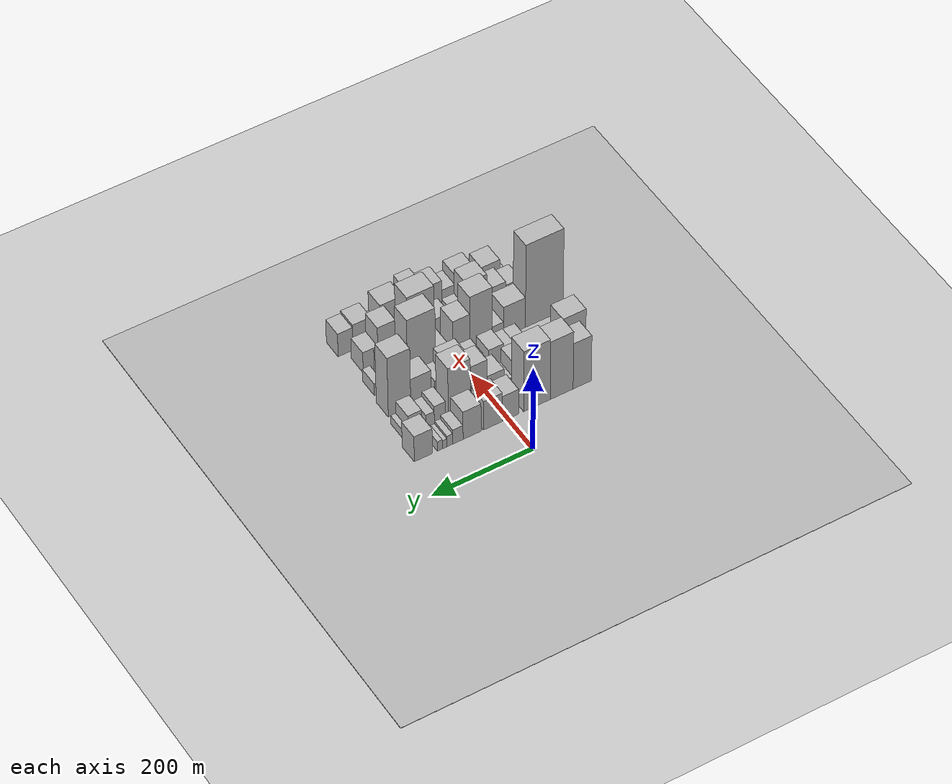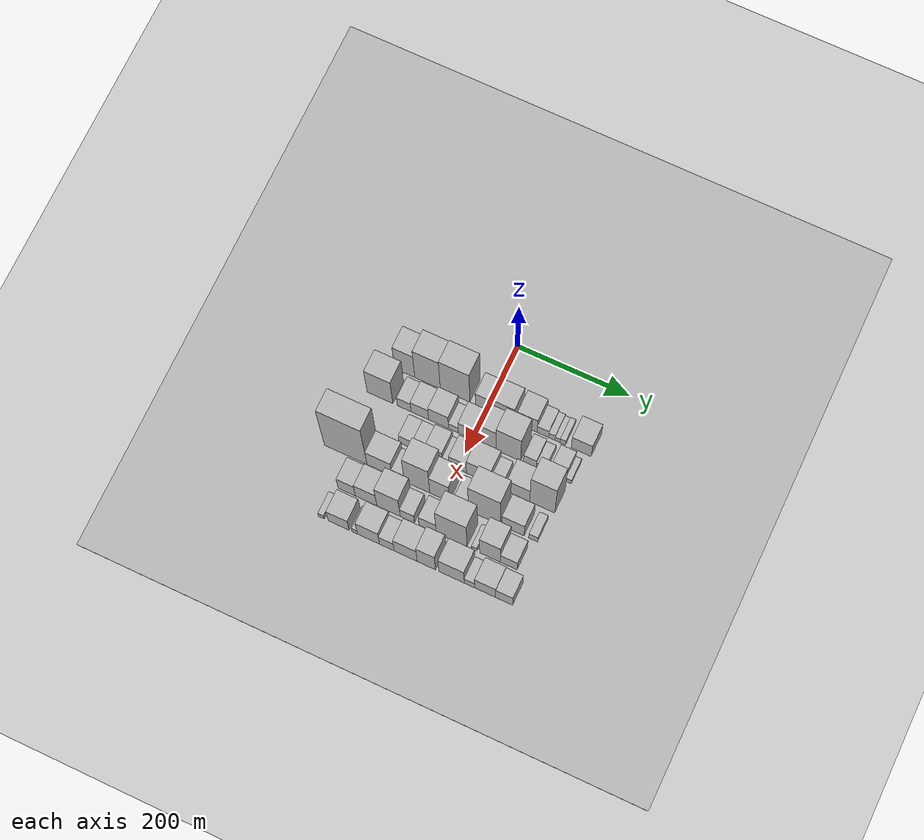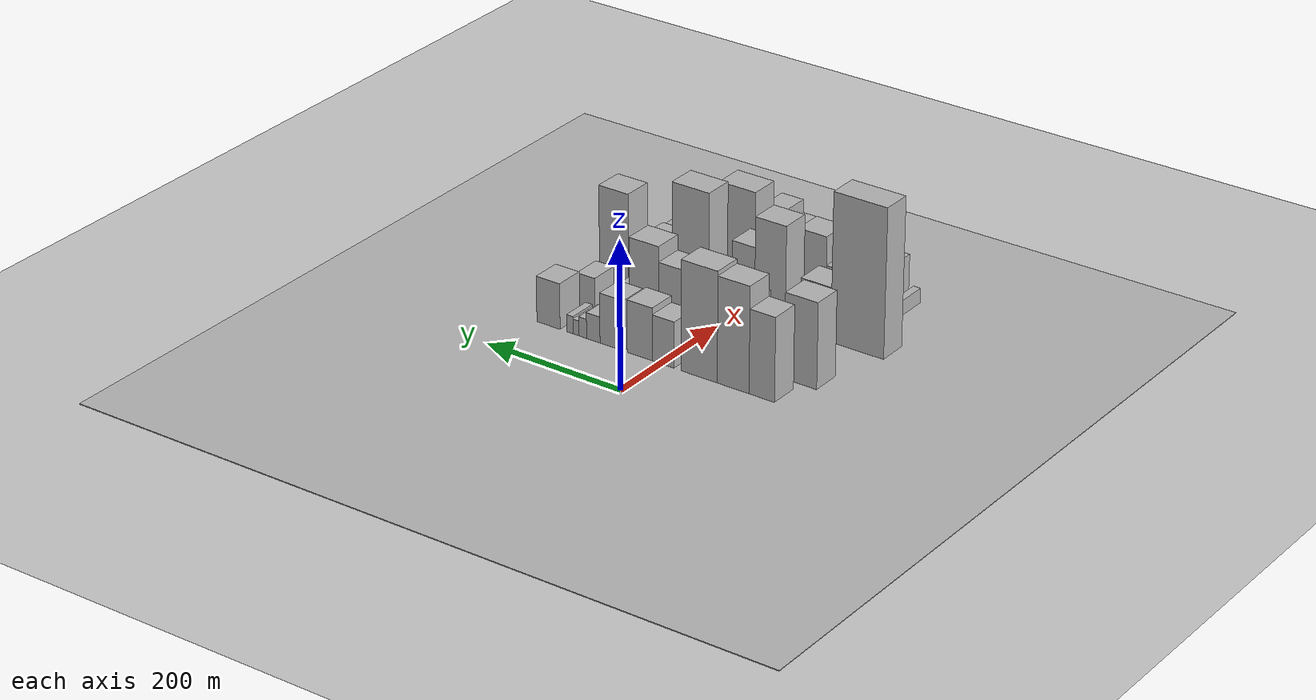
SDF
<sdf version="1.6">
 <world name="default">
  <include><name>ground_plane_1</name><uri>model://HANNAS_ground_plane</uri></include>
  <include>
   <name>ground_plane_2</name>
   <uri>model://HANNAS_ground_plane</uri>
   <pose>100 0 0  0 0 0</pose>
  </include>
  <model name="building_20">
   <static>1</static>
   <pose>100.0000 -148.0742 0 0.000000 0.000000 0.000000</pose>
   <link name="link">
    <pose>0 0 57.00 0 0 0</pose>
    <collision name="collision"><geometry><box><size>40.0000 36.5627 114.0000</size></box></geometry></collision>
    <visual name="visual">
     <cast_shadows>0</cast_shadows>
     <geometry><box><size>40.0000 36.5627 114.0000</size></box></geometry>
     <material>
      <script>
       <uri>model://HANNAS_wall/materials/scripts</uri>
       <uri>model://HANNAS_wall/materials/textures</uri>
       <name>vrc/HANNAS_wall</name>
      </script>
     </material>
    </visual>
   </link>
  </model>
  <model name="building_21">
   <static>1</static>
   <pose>100.0000 -106.7754 0 0.000000 0.000000 0.000000</pose>
   <link name="link">
    <pose>0 0 72.00 0 0 0</pose>
    <collision name="collision"><geometry><box><size>40.0000 46.0349 144.0000</size></box></geometry></collision>
    <visual name="visual">
     <cast_shadows>0</cast_shadows>
     <geometry><box><size>40.0000 46.0349 144.0000</size></box></geometry>
     <material>
      <script>
       <uri>model://HANNAS_wall/materials/scripts</uri>
       <uri>model://HANNAS_wall/materials/textures</uri>
       <name>vrc/HANNAS_wall</name>
      </script>
     </material>
    </visual>
   </link>
  </model>
  <model name="building_22">
   <static>1</static>
   <pose>100.0000 -57.1790 0 0.000000 0.000000 0.000000</pose>
   <link name="link">
    <pose>0 0 75.00 0 0 0</pose>
    <collision name="collision"><geometry><box><size>40.0000 53.1579 150.0000</size></box></geometry></collision>
    <visual name="visual">
     <cast_shadows>0</cast_shadows>
     <geometry><box><size>40.0000 53.1579 150.0000</size></box></geometry>
     <material>
      <script>
       <uri>model://HANNAS_wall/materials/scripts</uri>
       <uri>model://HANNAS_wall/materials/textures</uri>
       <name>vrc/HANNAS_wall</name>
      </script>
     </material>
    </visual>
   </link>
  </model>
  <model name="building_23">
   <static>1</static>
   <pose>100.0000 -4.4070 0 0.000000 0.000000 0.000000</pose>
   <link name="link">
    <pose>0 0 31.50 0 0 0</pose>
    <collision name="collision"><geometry><box><size>40.0000 32.3861 63.0000</size></box></geometry></collision>
    <visual name="visual">
     <cast_shadows>0</cast_shadows>
     <geometry><box><size>40.0000 32.3861 63.0000</size></box></geometry>
     <material>
      <script>
       <uri>model://HANNAS_wall/materials/scripts</uri>
       <uri>model://HANNAS_wall/materials/textures</uri>
       <name>vrc/HANNAS_wall</name>
      </script>
     </material>
    </visual>
   </link>
  </model>
  <model name="building_24">
   <static>1</static>
   <pose>100.0000 30.4983 0 0.000000 0.000000 0.000000</pose>
   <link name="link">
    <pose>0 0 36.00 0 0 0</pose>
    <collision name="collision"><geometry><box><size>40.0000 37.4245 72.0000</size></box></geometry></collision>
    <visual name="visual">
     <cast_shadows>0</cast_shadows>
     <geometry><box><size>40.0000 37.4245 72.0000</size></box></geometry>
     <material>
      <script>
       <uri>model://HANNAS_wall/materials/scripts</uri>
       <uri>model://HANNAS_wall/materials/textures</uri>
       <name>vrc/HANNAS_wall</name>
      </script>
     </material>
    </visual>
   </link>
  </model>
  <model name="building_25">
   <static>1</static>
   <pose>100.0000 72.1204 0 0.000000 0.000000 0.000000</pose>
   <link name="link">
    <pose>0 0 34.50 0 0 0</pose>
    <collision name="collision"><geometry><box><size>40.0000 35.8198 69.0000</size></box></geometry></collision>
    <visual name="visual">
     <cast_shadows>0</cast_shadows>
     <geometry><box><size>40.0000 35.8198 69.0000</size></box></geometry>
     <material>
      <script>
       <uri>model://HANNAS_wall/materials/scripts</uri>
       <uri>model://HANNAS_wall/materials/textures</uri>
       <name>vrc/HANNAS_wall</name>
      </script>
     </material>
    </visual>
   </link>
  </model>
  <model name="building_26">
   <static>1</static>
   <pose>100.0000 100.2217 0 0.000000 0.000000 0.000000</pose>
   <link name="link">
    <pose>0 0 18.00 0 0 0</pose>
    <collision name="collision"><geometry><box><size>40.0000 20.3829 36.0000</size></box></geometry></collision>
    <visual name="visual">
     <cast_shadows>0</cast_shadows>
     <geometry><box><size>40.0000 20.3829 36.0000</size></box></geometry>
     <material>
      <script>
       <uri>model://HANNAS_wall/materials/scripts</uri>
       <uri>model://HANNAS_wall/materials/textures</uri>
       <name>vrc/HANNAS_wall</name>
      </script>
     </material>
    </visual>
   </link>
  </model>
  <model name="building_27">
   <static>1</static>
   <pose>100.0000 116.1335 0 0.000000 0.000000 0.000000</pose>
   <link name="link">
    <pose>0 0 13.50 0 0 0</pose>
    <collision name="collision"><geometry><box><size>40.0000 11.4406 27.0000</size></box></geometry></collision>
    <visual name="visual">
     <cast_shadows>0</cast_shadows>
     <geometry><box><size>40.0000 11.4406 27.0000</size></box></geometry>
     <material>
      <script>
       <uri>model://HANNAS_wall/materials/scripts</uri>
       <uri>model://HANNAS_wall/materials/textures</uri>
       <name>vrc/HANNAS_wall</name>
      </script>
     </material>
    </visual>
   </link>
  </model>
  <model name="building_28">
   <static>1</static>
   <pose>100.0000 126.3763 0 0.000000 0.000000 0.000000</pose>
   <link name="link">
    <pose>0 0 10.50 0 0 0</pose>
    <collision name="collision"><geometry><box><size>40.0000 9.0448 21.0000</size></box></geometry></collision>
    <visual name="visual">
     <cast_shadows>0</cast_shadows>
     <geometry><box><size>40.0000 9.0448 21.0000</size></box></geometry>
     <material>
      <script>
       <uri>model://HANNAS_wall/materials/scripts</uri>
       <uri>model://HANNAS_wall/materials/textures</uri>
       <name>vrc/HANNAS_wall</name>
      </script>
     </material>
    </visual>
   </link>
  </model>
  <model name="building_29">
   <static>1</static>
   <pose>100.0000 135.7684 0 0.000000 0.000000 0.000000</pose>
   <link name="link">
    <pose>0 0 12.00 0 0 0</pose>
    <collision name="collision"><geometry><box><size>40.0000 9.7394 24.0000</size></box></geometry></collision>
    <visual name="visual">
     <cast_shadows>0</cast_shadows>
     <geometry><box><size>40.0000 9.7394 24.0000</size></box></geometry>
     <material>
      <script>
       <uri>model://HANNAS_wall/materials/scripts</uri>
       <uri>model://HANNAS_wall/materials/textures</uri>
       <name>vrc/HANNAS_wall</name>
      </script>
     </material>
    </visual>
   </link>
  </model>
  <model name="building_30">
   <static>1</static>
   <pose>100.0000 168.4412 0 0.000000 0.000000 0.000000</pose>
   <link name="link">
    <pose>0 0 31.50 0 0 0</pose>
    <collision name="collision"><geometry><box><size>40.0000 35.6063 63.0000</size></box></geometry></collision>
    <visual name="visual">
     <cast_shadows>0</cast_shadows>
     <geometry><box><size>40.0000 35.6063 63.0000</size></box></geometry>
     <material>
      <script>
       <uri>model://HANNAS_wall/materials/scripts</uri>
       <uri>model://HANNAS_wall/materials/textures</uri>
       <name>vrc/HANNAS_wall</name>
      </script>
     </material>
    </visual>
   </link>
  </model>
  <model name="building_70">
   <static>1</static>
   <pose>155.0000 -166.2401 0 0.000000 0.000000 0.000000</pose>
   <link name="link">
    <pose>0 0 58.50 0 0 0</pose>
    <collision name="collision"><geometry><box><size>40.0000 46.5068 117.0000</size></box></geometry></collision>
    <visual name="visual">
     <cast_shadows>0</cast_shadows>
     <geometry><box><size>40.0000 46.5068 117.0000</size></box></geometry>
     <material>
      <script>
       <uri>model://HANNAS_wall/materials/scripts</uri>
       <uri>model://HANNAS_wall/materials/textures</uri>
       <name>vrc/HANNAS_wall</name>
      </script>
     </material>
    </visual>
   </link>
  </model>
  <model name="building_71">
   <static>1</static>
   <pose>155.0000 -122.6274 0 0.000000 0.000000 0.000000</pose>
   <link name="link">
    <pose>0 0 22.50 0 0 0</pose>
    <collision name="collision"><geometry><box><size>40.0000 24.7187 45.0000</size></box></geometry></collision>
    <visual name="visual">
     <cast_shadows>0</cast_shadows>
     <geometry><box><size>40.0000 24.7187 45.0000</size></box></geometry>
     <material>
      <script>
       <uri>model://HANNAS_wall/materials/scripts</uri>
       <uri>model://HANNAS_wall/materials/textures</uri>
       <name>vrc/HANNAS_wall</name>
      </script>
     </material>
    </visual>
   </link>
  </model>
  <model name="building_72">
   <static>1</static>
   <pose>155.0000 -94.5024 0 0.000000 0.000000 0.000000</pose>
   <link name="link">
    <pose>0 0 27.00 0 0 0</pose>
    <collision name="collision"><geometry><box><size>40.0000 31.5313 54.0000</size></box></geometry></collision>
    <visual name="visual">
     <cast_shadows>0</cast_shadows>
     <geometry><box><size>40.0000 31.5313 54.0000</size></box></geometry>
     <material>
      <script>
       <uri>model://HANNAS_wall/materials/scripts</uri>
       <uri>model://HANNAS_wall/materials/textures</uri>
       <name>vrc/HANNAS_wall</name>
      </script>
     </material>
    </visual>
   </link>
  </model>
  <model name="building_73">
   <static>1</static>
   <pose>155.0000 -60.8470 0 0.000000 0.000000 0.000000</pose>
   <link name="link">
    <pose>0 0 33.00 0 0 0</pose>
    <collision name="collision"><geometry><box><size>40.0000 35.7794 66.0000</size></box></geometry></collision>
    <visual name="visual">
     <cast_shadows>0</cast_shadows>
     <geometry><box><size>40.0000 35.7794 66.0000</size></box></geometry>
     <material>
      <script>
       <uri>model://HANNAS_wall/materials/scripts</uri>
       <uri>model://HANNAS_wall/materials/textures</uri>
       <name>vrc/HANNAS_wall</name>
      </script>
     </material>
    </visual>
   </link>
  </model>
  <model name="building_74">
   <static>1</static>
   <pose>155.0000 -34.1491 0 0.000000 0.000000 0.000000</pose>
   <link name="link">
    <pose>0 0 15.00 0 0 0</pose>
    <collision name="collision"><geometry><box><size>40.0000 17.6164 30.0000</size></box></geometry></collision>
    <visual name="visual">
     <cast_shadows>0</cast_shadows>
     <geometry><box><size>40.0000 17.6164 30.0000</size></box></geometry>
     <material>
      <script>
       <uri>model://HANNAS_wall/materials/scripts</uri>
       <uri>model://HANNAS_wall/materials/textures</uri>
       <name>vrc/HANNAS_wall</name>
      </script>
     </material>
    </visual>
   </link>
  </model>
  <model name="building_75">
   <static>1</static>
   <pose>155.0000 -8.4847 0 0.000000 0.000000 0.000000</pose>
   <link name="link">
    <pose>0 0 30.00 0 0 0</pose>
    <collision name="collision"><geometry><box><size>40.0000 33.7123 60.0000</size></box></geometry></collision>
    <visual name="visual">
     <cast_shadows>0</cast_shadows>
     <geometry><box><size>40.0000 33.7123 60.0000</size></box></geometry>
     <material>
      <script>
       <uri>model://HANNAS_wall/materials/scripts</uri>
       <uri>model://HANNAS_wall/materials/textures</uri>
       <name>vrc/HANNAS_wall</name>
      </script>
     </material>
    </visual>
   </link>
  </model>
  <model name="building_76">
   <static>1</static>
   <pose>155.0000 25.0498 0 0.000000 0.000000 0.000000</pose>
   <link name="link">
    <pose>0 0 51.00 0 0 0</pose>
    <collision name="collision"><geometry><box><size>40.0000 33.3567 102.0000</size></box></geometry></collision>
    <visual name="visual">
     <cast_shadows>0</cast_shadows>
     <geometry><box><size>40.0000 33.3567 102.0000</size></box></geometry>
     <material>
      <script>
       <uri>model://HANNAS_wall/materials/scripts</uri>
       <uri>model://HANNAS_wall/materials/textures</uri>
       <name>vrc/HANNAS_wall</name>
      </script>
     </material>
    </visual>
   </link>
  </model>
  <model name="building_77">
   <static>1</static>
   <pose>155.0000 63.8297 0 0.000000 0.000000 0.000000</pose>
   <link name="link">
    <pose>0 0 61.50 0 0 0</pose>
    <collision name="collision"><geometry><box><size>40.0000 44.2031 123.0000</size></box></geometry></collision>
    <visual name="visual">
     <cast_shadows>0</cast_shadows>
     <geometry><box><size>40.0000 44.2031 123.0000</size></box></geometry>
     <material>
      <script>
       <uri>model://HANNAS_wall/materials/scripts</uri>
       <uri>model://HANNAS_wall/materials/textures</uri>
       <name>vrc/HANNAS_wall</name>
      </script>
     </material>
    </visual>
   </link>
  </model>
  <model name="building_78">
   <static>1</static>
   <pose>155.0000 102.2572 0 0.000000 0.000000 0.000000</pose>
   <link name="link">
    <pose>0 0 22.50 0 0 0</pose>
    <collision name="collision"><geometry><box><size>40.0000 22.6520 45.0000</size></box></geometry></collision>
    <visual name="visual">
     <cast_shadows>0</cast_shadows>
     <geometry><box><size>40.0000 22.6520 45.0000</size></box></geometry>
     <material>
      <script>
       <uri>model://HANNAS_wall/materials/scripts</uri>
       <uri>model://HANNAS_wall/materials/textures</uri>
       <name>vrc/HANNAS_wall</name>
      </script>
     </material>
    </visual>
   </link>
  </model>
  <model name="building_79">
   <static>1</static>
   <pose>155.0000 121.9181 0 0.000000 0.000000 0.000000</pose>
   <link name="link">
    <pose>0 0 16.50 0 0 0</pose>
    <collision name="collision"><geometry><box><size>40.0000 16.6698 33.0000</size></box></geometry></collision>
    <visual name="visual">
     <cast_shadows>0</cast_shadows>
     <geometry><box><size>40.0000 16.6698 33.0000</size></box></geometry>
     <material>
      <script>
       <uri>model://HANNAS_wall/materials/scripts</uri>
       <uri>model://HANNAS_wall/materials/textures</uri>
       <name>vrc/HANNAS_wall</name>
      </script>
     </material>
    </visual>
   </link>
  </model>
  <model name="building_80">
   <static>1</static>
   <pose>155.0000 151.9114 0 0.000000 0.000000 0.000000</pose>
   <link name="link">
    <pose>0 0 25.50 0 0 0</pose>
    <collision name="collision"><geometry><box><size>40.0000 27.3167 51.0000</size></box></geometry></collision>
    <visual name="visual">
     <cast_shadows>0</cast_shadows>
     <geometry><box><size>40.0000 27.3167 51.0000</size></box></geometry>
     <material>
      <script>
       <uri>model://HANNAS_wall/materials/scripts</uri>
       <uri>model://HANNAS_wall/materials/textures</uri>
       <name>vrc/HANNAS_wall</name>
      </script>
     </material>
    </visual>
   </link>
  </model>
  <model name="building_81">
   <static>1</static>
   <pose>155.0000 170.6803 0 0.000000 0.000000 0.000000</pose>
   <link name="link">
    <pose>0 0 10.50 0 0 0</pose>
    <collision name="collision"><geometry><box><size>40.0000 10.2212 21.0000</size></box></geometry></collision>
    <visual name="visual">
     <cast_shadows>0</cast_shadows>
     <geometry><box><size>40.0000 10.2212 21.0000</size></box></geometry>
     <material>
      <script>
       <uri>model://HANNAS_wall/materials/scripts</uri>
       <uri>model://HANNAS_wall/materials/textures</uri>
       <name>vrc/HANNAS_wall</name>
      </script>
     </material>
    </visual>
   </link>
  </model>
  <model name="building_121">
   <static>1</static>
   <pose>210.0000 -93.1807 0 0.000000 0.000000 0.000000</pose>
   <link name="link">
    <pose>0 0 21.00 0 0 0</pose>
    <collision name="collision"><geometry><box><size>40.0000 24.5276 42.0000</size></box></geometry></collision>
    <visual name="visual">
     <cast_shadows>0</cast_shadows>
     <geometry><box><size>40.0000 24.5276 42.0000</size></box></geometry>
     <material>
      <script>
       <uri>model://HANNAS_wall/materials/scripts</uri>
       <uri>model://HANNAS_wall/materials/textures</uri>
       <name>vrc/HANNAS_wall</name>
      </script>
     </material>
    </visual>
   </link>
  </model>
  <model name="building_122">
   <static>1</static>
   <pose>210.0000 -69.5797 0 0.000000 0.000000 0.000000</pose>
   <link name="link">
    <pose>0 0 21.00 0 0 0</pose>
    <collision name="collision"><geometry><box><size>40.0000 22.6744 42.0000</size></box></geometry></collision>
    <visual name="visual">
     <cast_shadows>0</cast_shadows>
     <geometry><box><size>40.0000 22.6744 42.0000</size></box></geometry>
     <material>
      <script>
       <uri>model://HANNAS_wall/materials/scripts</uri>
       <uri>model://HANNAS_wall/materials/textures</uri>
       <name>vrc/HANNAS_wall</name>
      </script>
     </material>
    </visual>
   </link>
  </model>
  <model name="building_123">
   <static>1</static>
   <pose>210.0000 -43.1449 0 0.000000 0.000000 0.000000</pose>
   <link name="link">
    <pose>0 0 27.00 0 0 0</pose>
    <collision name="collision"><geometry><box><size>40.0000 30.1953 54.0000</size></box></geometry></collision>
    <visual name="visual">
     <cast_shadows>0</cast_shadows>
     <geometry><box><size>40.0000 30.1953 54.0000</size></box></geometry>
     <material>
      <script>
       <uri>model://HANNAS_wall/materials/scripts</uri>
       <uri>model://HANNAS_wall/materials/textures</uri>
       <name>vrc/HANNAS_wall</name>
      </script>
     </material>
    </visual>
   </link>
  </model>
  <model name="building_124">
   <static>1</static>
   <pose>210.0000 -22.2036 0 0.000000 0.000000 0.000000</pose>
   <link name="link">
    <pose>0 0 13.50 0 0 0</pose>
    <collision name="collision"><geometry><box><size>40.0000 11.6872 27.0000</size></box></geometry></collision>
    <visual name="visual">
     <cast_shadows>0</cast_shadows>
     <geometry><box><size>40.0000 11.6872 27.0000</size></box></geometry>
     <material>
      <script>
       <uri>model://HANNAS_wall/materials/scripts</uri>
       <uri>model://HANNAS_wall/materials/textures</uri>
       <name>vrc/HANNAS_wall</name>
      </script>
     </material>
    </visual>
   </link>
  </model>
  <model name="building_125">
   <static>1</static>
   <pose>210.0000 -0.6732 0 0.000000 0.000000 0.000000</pose>
   <link name="link">
    <pose>0 0 27.00 0 0 0</pose>
    <collision name="collision"><geometry><box><size>40.0000 31.3736 54.0000</size></box></geometry></collision>
    <visual name="visual">
     <cast_shadows>0</cast_shadows>
     <geometry><box><size>40.0000 31.3736 54.0000</size></box></geometry>
     <material>
      <script>
       <uri>model://HANNAS_wall/materials/scripts</uri>
       <uri>model://HANNAS_wall/materials/textures</uri>
       <name>vrc/HANNAS_wall</name>
      </script>
     </material>
    </visual>
   </link>
  </model>
  <model name="building_126">
   <static>1</static>
   <pose>210.0000 36.4882 0 0.000000 0.000000 0.000000</pose>
   <link name="link">
    <pose>0 0 36.00 0 0 0</pose>
    <collision name="collision"><geometry><box><size>40.0000 42.9493 72.0000</size></box></geometry></collision>
    <visual name="visual">
     <cast_shadows>0</cast_shadows>
     <geometry><box><size>40.0000 42.9493 72.0000</size></box></geometry>
     <material>
      <script>
       <uri>model://HANNAS_wall/materials/scripts</uri>
       <uri>model://HANNAS_wall/materials/textures</uri>
       <name>vrc/HANNAS_wall</name>
      </script>
     </material>
    </visual>
   </link>
  </model>
  <model name="building_127">
   <static>1</static>
   <pose>210.0000 68.7610 0 0.000000 0.000000 0.000000</pose>
   <link name="link">
    <pose>0 0 19.50 0 0 0</pose>
    <collision name="collision"><geometry><box><size>40.0000 21.5962 39.0000</size></box></geometry></collision>
    <visual name="visual">
     <cast_shadows>0</cast_shadows>
     <geometry><box><size>40.0000 21.5962 39.0000</size></box></geometry>
     <material>
      <script>
       <uri>model://HANNAS_wall/materials/scripts</uri>
       <uri>model://HANNAS_wall/materials/textures</uri>
       <name>vrc/HANNAS_wall</name>
      </script>
     </material>
    </visual>
   </link>
  </model>
  <model name="building_128">
   <static>1</static>
   <pose>210.0000 106.8477 0 0.000000 0.000000 0.000000</pose>
   <link name="link">
    <pose>0 0 34.50 0 0 0</pose>
    <collision name="collision"><geometry><box><size>40.0000 40.5772 69.0000</size></box></geometry></collision>
    <visual name="visual">
     <cast_shadows>0</cast_shadows>
     <geometry><box><size>40.0000 40.5772 69.0000</size></box></geometry>
     <material>
      <script>
       <uri>model://HANNAS_wall/materials/scripts</uri>
       <uri>model://HANNAS_wall/materials/textures</uri>
       <name>vrc/HANNAS_wall</name>
      </script>
     </material>
    </visual>
   </link>
  </model>
  <model name="building_129">
   <static>1</static>
   <pose>210.0000 149.4211 0 0.000000 0.000000 0.000000</pose>
   <link name="link">
    <pose>0 0 73.50 0 0 0</pose>
    <collision name="collision"><geometry><box><size>40.0000 44.5696 147.0000</size></box></geometry></collision>
    <visual name="visual">
     <cast_shadows>0</cast_shadows>
     <geometry><box><size>40.0000 44.5696 147.0000</size></box></geometry>
     <material>
      <script>
       <uri>model://HANNAS_wall/materials/scripts</uri>
       <uri>model://HANNAS_wall/materials/textures</uri>
       <name>vrc/HANNAS_wall</name>
      </script>
     </material>
    </visual>
   </link>
  </model>
  <model name="building_173">
   <static>1</static>
   <pose>265.0000 -174.7765 0 0.000000 0.000000 0.000000</pose>
   <link name="link">
    <pose>0 0 102.00 0 0 0</pose>
    <collision name="collision"><geometry><box><size>40.0000 76.4953 204.0000</size></box></geometry></collision>
    <visual name="visual">
     <cast_shadows>0</cast_shadows>
     <geometry><box><size>40.0000 76.4953 204.0000</size></box></geometry>
     <material>
      <script>
       <uri>model://HANNAS_wall/materials/scripts</uri>
       <uri>model://HANNAS_wall/materials/textures</uri>
       <name>vrc/HANNAS_wall</name>
      </script>
     </material>
    </visual>
   </link>
  </model>
  <model name="building_174">
   <static>1</static>
   <pose>265.0000 -114.1922 0 0.000000 0.000000 0.000000</pose>
   <link name="link">
    <pose>0 0 37.50 0 0 0</pose>
    <collision name="collision"><geometry><box><size>40.0000 44.6733 75.0000</size></box></geometry></collision>
    <visual name="visual">
     <cast_shadows>0</cast_shadows>
     <geometry><box><size>40.0000 44.6733 75.0000</size></box></geometry>
     <material>
      <script>
       <uri>model://HANNAS_wall/materials/scripts</uri>
       <uri>model://HANNAS_wall/materials/textures</uri>
       <name>vrc/HANNAS_wall</name>
      </script>
     </material>
    </visual>
   </link>
  </model>
  <model name="building_175">
   <static>1</static>
   <pose>265.0000 -80.7296 0 0.000000 0.000000 0.000000</pose>
   <link name="link">
    <pose>0 0 19.50 0 0 0</pose>
    <collision name="collision"><geometry><box><size>40.0000 22.2520 39.0000</size></box></geometry></collision>
    <visual name="visual">
     <cast_shadows>0</cast_shadows>
     <geometry><box><size>40.0000 22.2520 39.0000</size></box></geometry>
     <material>
      <script>
       <uri>model://HANNAS_wall/materials/scripts</uri>
       <uri>model://HANNAS_wall/materials/textures</uri>
       <name>vrc/HANNAS_wall</name>
      </script>
     </material>
    </visual>
   </link>
  </model>
  <model name="building_176">
   <static>1</static>
   <pose>265.0000 -46.8801 0 0.000000 0.000000 0.000000</pose>
   <link name="link">
    <pose>0 0 69.00 0 0 0</pose>
    <collision name="collision"><geometry><box><size>40.0000 45.4469 138.0000</size></box></geometry></collision>
    <visual name="visual">
     <cast_shadows>0</cast_shadows>
     <geometry><box><size>40.0000 45.4469 138.0000</size></box></geometry>
     <material>
      <script>
       <uri>model://HANNAS_wall/materials/scripts</uri>
       <uri>model://HANNAS_wall/materials/textures</uri>
       <name>vrc/HANNAS_wall</name>
      </script>
     </material>
    </visual>
   </link>
  </model>
  <model name="building_177">
   <static>1</static>
   <pose>265.0000 -7.0265 0 0.000000 0.000000 0.000000</pose>
   <link name="link">
    <pose>0 0 48.00 0 0 0</pose>
    <collision name="collision"><geometry><box><size>40.0000 34.2604 96.0000</size></box></geometry></collision>
    <visual name="visual">
     <cast_shadows>0</cast_shadows>
     <geometry><box><size>40.0000 34.2604 96.0000</size></box></geometry>
     <material>
      <script>
       <uri>model://HANNAS_wall/materials/scripts</uri>
       <uri>model://HANNAS_wall/materials/textures</uri>
       <name>vrc/HANNAS_wall</name>
      </script>
     </material>
    </visual>
   </link>
  </model>
  <model name="building_178">
   <static>1</static>
   <pose>265.0000 31.7942 0 0.000000 0.000000 0.000000</pose>
   <link name="link">
    <pose>0 0 24.00 0 0 0</pose>
    <collision name="collision"><geometry><box><size>40.0000 25.3809 48.0000</size></box></geometry></collision>
    <visual name="visual">
     <cast_shadows>0</cast_shadows>
     <geometry><box><size>40.0000 25.3809 48.0000</size></box></geometry>
     <material>
      <script>
       <uri>model://HANNAS_wall/materials/scripts</uri>
       <uri>model://HANNAS_wall/materials/textures</uri>
       <name>vrc/HANNAS_wall</name>
      </script>
     </material>
    </visual>
   </link>
  </model>
  <model name="building_179">
   <static>1</static>
   <pose>265.0000 72.5344 0 0.000000 0.000000 0.000000</pose>
   <link name="link">
    <pose>0 0 75.00 0 0 0</pose>
    <collision name="collision"><geometry><box><size>40.0000 56.0994 150.0000</size></box></geometry></collision>
    <visual name="visual">
     <cast_shadows>0</cast_shadows>
     <geometry><box><size>40.0000 56.0994 150.0000</size></box></geometry>
     <material>
      <script>
       <uri>model://HANNAS_wall/materials/scripts</uri>
       <uri>model://HANNAS_wall/materials/textures</uri>
       <name>vrc/HANNAS_wall</name>
      </script>
     </material>
    </visual>
   </link>
  </model>
  <model name="building_180">
   <static>1</static>
   <pose>265.0000 123.2350 0 0.000000 0.000000 0.000000</pose>
   <link name="link">
    <pose>0 0 33.00 0 0 0</pose>
    <collision name="collision"><geometry><box><size>40.0000 39.3018 66.0000</size></box></geometry></collision>
    <visual name="visual">
     <cast_shadows>0</cast_shadows>
     <geometry><box><size>40.0000 39.3018 66.0000</size></box></geometry>
     <material>
      <script>
       <uri>model://HANNAS_wall/materials/scripts</uri>
       <uri>model://HANNAS_wall/materials/textures</uri>
       <name>vrc/HANNAS_wall</name>
      </script>
     </material>
    </visual>
   </link>
  </model>
  <model name="building_181">
   <static>1</static>
   <pose>265.0000 158.7120 0 0.000000 0.000000 0.000000</pose>
   <link name="link">
    <pose>0 0 15.00 0 0 0</pose>
    <collision name="collision"><geometry><box><size>40.0000 15.6522 30.0000</size></box></geometry></collision>
    <visual name="visual">
     <cast_shadows>0</cast_shadows>
     <geometry><box><size>40.0000 15.6522 30.0000</size></box></geometry>
     <material>
      <script>
       <uri>model://HANNAS_wall/materials/scripts</uri>
       <uri>model://HANNAS_wall/materials/textures</uri>
       <name>vrc/HANNAS_wall</name>
      </script>
     </material>
    </visual>
   </link>
  </model>
  <model name="building_227">
   <static>1</static>
   <pose>320.0000 -145.9208 0 0.000000 0.000000 0.000000</pose>
   <link name="link">
    <pose>0 0 30.00 0 0 0</pose>
    <collision name="collision"><geometry><box><size>40.0000 31.0925 60.0000</size></box></geometry></collision>
    <visual name="visual">
     <cast_shadows>0</cast_shadows>
     <geometry><box><size>40.0000 31.0925 60.0000</size></box></geometry>
     <material>
      <script>
       <uri>model://HANNAS_wall/materials/scripts</uri>
       <uri>model://HANNAS_wall/materials/textures</uri>
       <name>vrc/HANNAS_wall</name>
      </script>
     </material>
    </visual>
   </link>
  </model>
  <model name="building_228">
   <static>1</static>
   <pose>320.0000 -111.3155 0 0.000000 0.000000 0.000000</pose>
   <link name="link">
    <pose>0 0 34.50 0 0 0</pose>
    <collision name="collision"><geometry><box><size>40.0000 38.1181 69.0000</size></box></geometry></collision>
    <visual name="visual">
     <cast_shadows>0</cast_shadows>
     <geometry><box><size>40.0000 38.1181 69.0000</size></box></geometry>
     <material>
      <script>
       <uri>model://HANNAS_wall/materials/scripts</uri>
       <uri>model://HANNAS_wall/materials/textures</uri>
       <name>vrc/HANNAS_wall</name>
      </script>
     </material>
    </visual>
   </link>
  </model>
  <model name="building_229">
   <static>1</static>
   <pose>320.0000 -71.3849 0 0.000000 0.000000 0.000000</pose>
   <link name="link">
    <pose>0 0 54.00 0 0 0</pose>
    <collision name="collision"><geometry><box><size>40.0000 41.7433 108.0000</size></box></geometry></collision>
    <visual name="visual">
     <cast_shadows>0</cast_shadows>
     <geometry><box><size>40.0000 41.7433 108.0000</size></box></geometry>
     <material>
      <script>
       <uri>model://HANNAS_wall/materials/scripts</uri>
       <uri>model://HANNAS_wall/materials/textures</uri>
       <name>vrc/HANNAS_wall</name>
      </script>
     </material>
    </visual>
   </link>
  </model>
  <model name="building_230">
   <static>1</static>
   <pose>320.0000 -37.9559 0 0.000000 0.000000 0.000000</pose>
   <link name="link">
    <pose>0 0 24.00 0 0 0</pose>
    <collision name="collision"><geometry><box><size>40.0000 25.1147 48.0000</size></box></geometry></collision>
    <visual name="visual">
     <cast_shadows>0</cast_shadows>
     <geometry><box><size>40.0000 25.1147 48.0000</size></box></geometry>
     <material>
      <script>
       <uri>model://HANNAS_wall/materials/scripts</uri>
       <uri>model://HANNAS_wall/materials/textures</uri>
       <name>vrc/HANNAS_wall</name>
      </script>
     </material>
    </visual>
   </link>
  </model>
  <model name="building_231">
   <static>1</static>
   <pose>320.0000 -2.0353 0 0.000000 0.000000 0.000000</pose>
   <link name="link">
    <pose>0 0 27.00 0 0 0</pose>
    <collision name="collision"><geometry><box><size>40.0000 30.7263 54.0000</size></box></geometry></collision>
    <visual name="visual">
     <cast_shadows>0</cast_shadows>
     <geometry><box><size>40.0000 30.7263 54.0000</size></box></geometry>
     <material>
      <script>
       <uri>model://HANNAS_wall/materials/scripts</uri>
       <uri>model://HANNAS_wall/materials/textures</uri>
       <name>vrc/HANNAS_wall</name>
      </script>
     </material>
    </visual>
   </link>
  </model>
  <model name="building_232">
   <static>1</static>
   <pose>320.0000 40.5345 0 0.000000 0.000000 0.000000</pose>
   <link name="link">
    <pose>0 0 69.00 0 0 0</pose>
    <collision name="collision"><geometry><box><size>40.0000 54.4134 138.0000</size></box></geometry></collision>
    <visual name="visual">
     <cast_shadows>0</cast_shadows>
     <geometry><box><size>40.0000 54.4134 138.0000</size></box></geometry>
     <material>
      <script>
       <uri>model://HANNAS_wall/materials/scripts</uri>
       <uri>model://HANNAS_wall/materials/textures</uri>
       <name>vrc/HANNAS_wall</name>
      </script>
     </material>
    </visual>
   </link>
  </model>
  <model name="building_233">
   <static>1</static>
   <pose>320.0000 80.3730 0 0.000000 0.000000 0.000000</pose>
   <link name="link">
    <pose>0 0 10.50 0 0 0</pose>
    <collision name="collision"><geometry><box><size>40.0000 9.2635 21.0000</size></box></geometry></collision>
    <visual name="visual">
     <cast_shadows>0</cast_shadows>
     <geometry><box><size>40.0000 9.2635 21.0000</size></box></geometry>
     <material>
      <script>
       <uri>model://HANNAS_wall/materials/scripts</uri>
       <uri>model://HANNAS_wall/materials/textures</uri>
       <name>vrc/HANNAS_wall</name>
      </script>
     </material>
    </visual>
   </link>
  </model>
  <model name="building_234">
   <static>1</static>
   <pose>320.0000 108.2284 0 0.000000 0.000000 0.000000</pose>
   <link name="link">
    <pose>0 0 48.00 0 0 0</pose>
    <collision name="collision"><geometry><box><size>40.0000 36.4473 96.0000</size></box></geometry></collision>
    <visual name="visual">
     <cast_shadows>0</cast_shadows>
     <geometry><box><size>40.0000 36.4473 96.0000</size></box></geometry>
     <material>
      <script>
       <uri>model://HANNAS_wall/materials/scripts</uri>
       <uri>model://HANNAS_wall/materials/textures</uri>
       <name>vrc/HANNAS_wall</name>
      </script>
     </material>
    </visual>
   </link>
  </model>
  <model name="building_235">
   <static>1</static>
   <pose>320.0000 141.2808 0 0.000000 0.000000 0.000000</pose>
   <link name="link">
    <pose>0 0 25.50 0 0 0</pose>
    <collision name="collision"><geometry><box><size>40.0000 29.6575 51.0000</size></box></geometry></collision>
    <visual name="visual">
     <cast_shadows>0</cast_shadows>
     <geometry><box><size>40.0000 29.6575 51.0000</size></box></geometry>
     <material>
      <script>
       <uri>model://HANNAS_wall/materials/scripts</uri>
       <uri>model://HANNAS_wall/materials/textures</uri>
       <name>vrc/HANNAS_wall</name>
      </script>
     </material>
    </visual>
   </link>
  </model>
  <model name="building_277">
   <static>1</static>
   <pose>375.0000 -164.5327 0 0.000000 0.000000 0.000000</pose>
   <link name="link">
    <pose>0 0 10.50 0 0 0</pose>
    <collision name="collision"><geometry><box><size>40.0000 10.3090 21.0000</size></box></geometry></collision>
    <visual name="visual">
     <cast_shadows>0</cast_shadows>
     <geometry><box><size>40.0000 10.3090 21.0000</size></box></geometry>
     <material>
      <script>
       <uri>model://HANNAS_wall/materials/scripts</uri>
       <uri>model://HANNAS_wall/materials/textures</uri>
       <name>vrc/HANNAS_wall</name>
      </script>
     </material>
    </visual>
   </link>
  </model>
  <model name="building_278">
   <static>1</static>
   <pose>375.0000 -133.6030 0 0.000000 0.000000 0.000000</pose>
   <link name="link">
    <pose>0 0 31.50 0 0 0</pose>
    <collision name="collision"><geometry><box><size>40.0000 37.5505 63.0000</size></box></geometry></collision>
    <visual name="visual">
     <cast_shadows>0</cast_shadows>
     <geometry><box><size>40.0000 37.5505 63.0000</size></box></geometry>
     <material>
      <script>
       <uri>model://HANNAS_wall/materials/scripts</uri>
       <uri>model://HANNAS_wall/materials/textures</uri>
       <name>vrc/HANNAS_wall</name>
      </script>
     </material>
    </visual>
   </link>
  </model>
  <model name="building_279">
   <static>1</static>
   <pose>375.0000 -104.9557 0 0.000000 0.000000 0.000000</pose>
   <link name="link">
    <pose>0 0 12.00 0 0 0</pose>
    <collision name="collision"><geometry><box><size>40.0000 9.7441 24.0000</size></box></geometry></collision>
    <visual name="visual">
     <cast_shadows>0</cast_shadows>
     <geometry><box><size>40.0000 9.7441 24.0000</size></box></geometry>
     <material>
      <script>
       <uri>model://HANNAS_wall/materials/scripts</uri>
       <uri>model://HANNAS_wall/materials/textures</uri>
       <name>vrc/HANNAS_wall</name>
      </script>
     </material>
    </visual>
   </link>
  </model>
  <model name="building_280">
   <static>1</static>
   <pose>375.0000 -80.4645 0 0.000000 0.000000 0.000000</pose>
   <link name="link">
    <pose>0 0 37.50 0 0 0</pose>
    <collision name="collision"><geometry><box><size>40.0000 39.2384 75.0000</size></box></geometry></collision>
    <visual name="visual">
     <cast_shadows>0</cast_shadows>
     <geometry><box><size>40.0000 39.2384 75.0000</size></box></geometry>
     <material>
      <script>
       <uri>model://HANNAS_wall/materials/scripts</uri>
       <uri>model://HANNAS_wall/materials/textures</uri>
       <name>vrc/HANNAS_wall</name>
      </script>
     </material>
    </visual>
   </link>
  </model>
  <model name="building_281">
   <static>1</static>
   <pose>375.0000 -47.8570 0 0.000000 0.000000 0.000000</pose>
   <link name="link">
    <pose>0 0 25.50 0 0 0</pose>
    <collision name="collision"><geometry><box><size>40.0000 25.9765 51.0000</size></box></geometry></collision>
    <visual name="visual">
     <cast_shadows>0</cast_shadows>
     <geometry><box><size>40.0000 25.9765 51.0000</size></box></geometry>
     <material>
      <script>
       <uri>model://HANNAS_wall/materials/scripts</uri>
       <uri>model://HANNAS_wall/materials/textures</uri>
       <name>vrc/HANNAS_wall</name>
      </script>
     </material>
    </visual>
   </link>
  </model>
  <model name="building_282">
   <static>1</static>
   <pose>375.0000 -14.4987 0 0.000000 0.000000 0.000000</pose>
   <link name="link">
    <pose>0 0 37.50 0 0 0</pose>
    <collision name="collision"><geometry><box><size>40.0000 40.7402 75.0000</size></box></geometry></collision>
    <visual name="visual">
     <cast_shadows>0</cast_shadows>
     <geometry><box><size>40.0000 40.7402 75.0000</size></box></geometry>
     <material>
      <script>
       <uri>model://HANNAS_wall/materials/scripts</uri>
       <uri>model://HANNAS_wall/materials/textures</uri>
       <name>vrc/HANNAS_wall</name>
      </script>
     </material>
    </visual>
   </link>
  </model>
  <model name="building_283">
   <static>1</static>
   <pose>375.0000 21.9661 0 0.000000 0.000000 0.000000</pose>
   <link name="link">
    <pose>0 0 46.50 0 0 0</pose>
    <collision name="collision"><geometry><box><size>40.0000 32.1894 93.0000</size></box></geometry></collision>
    <visual name="visual">
     <cast_shadows>0</cast_shadows>
     <geometry><box><size>40.0000 32.1894 93.0000</size></box></geometry>
     <material>
      <script>
       <uri>model://HANNAS_wall/materials/scripts</uri>
       <uri>model://HANNAS_wall/materials/textures</uri>
       <name>vrc/HANNAS_wall</name>
      </script>
     </material>
    </visual>
   </link>
  </model>
  <model name="building_284">
   <static>1</static>
   <pose>375.0000 66.4572 0 0.000000 0.000000 0.000000</pose>
   <link name="link">
    <pose>0 0 40.50 0 0 0</pose>
    <collision name="collision"><geometry><box><size>40.0000 44.7927 81.0000</size></box></geometry></collision>
    <visual name="visual">
     <cast_shadows>0</cast_shadows>
     <geometry><box><size>40.0000 44.7927 81.0000</size></box></geometry>
     <material>
      <script>
       <uri>model://HANNAS_wall/materials/scripts</uri>
       <uri>model://HANNAS_wall/materials/textures</uri>
       <name>vrc/HANNAS_wall</name>
      </script>
     </material>
    </visual>
   </link>
  </model>
  <model name="building_285">
   <static>1</static>
   <pose>375.0000 97.8717 0 0.000000 0.000000 0.000000</pose>
   <link name="link">
    <pose>0 0 16.50 0 0 0</pose>
    <collision name="collision"><geometry><box><size>40.0000 18.0362 33.0000</size></box></geometry></collision>
    <visual name="visual">
     <cast_shadows>0</cast_shadows>
     <geometry><box><size>40.0000 18.0362 33.0000</size></box></geometry>
     <material>
      <script>
       <uri>model://HANNAS_wall/materials/scripts</uri>
       <uri>model://HANNAS_wall/materials/textures</uri>
       <name>vrc/HANNAS_wall</name>
      </script>
     </material>
    </visual>
   </link>
  </model>
  <model name="building_286">
   <static>1</static>
   <pose>375.0000 125.3516 0 0.000000 0.000000 0.000000</pose>
   <link name="link">
    <pose>0 0 31.50 0 0 0</pose>
    <collision name="collision"><geometry><box><size>40.0000 36.9236 63.0000</size></box></geometry></collision>
    <visual name="visual">
     <cast_shadows>0</cast_shadows>
     <geometry><box><size>40.0000 36.9236 63.0000</size></box></geometry>
     <material>
      <script>
       <uri>model://HANNAS_wall/materials/scripts</uri>
       <uri>model://HANNAS_wall/materials/textures</uri>
       <name>vrc/HANNAS_wall</name>
      </script>
     </material>
    </visual>
   </link>
  </model>
  <model name="building_287">
   <static>1</static>
   <pose>375.0000 158.6854 0 0.000000 0.000000 0.000000</pose>
   <link name="link">
    <pose>0 0 28.50 0 0 0</pose>
    <collision name="collision"><geometry><box><size>40.0000 29.7440 57.0000</size></box></geometry></collision>
    <visual name="visual">
     <cast_shadows>0</cast_shadows>
     <geometry><box><size>40.0000 29.7440 57.0000</size></box></geometry>
     <material>
      <script>
       <uri>model://HANNAS_wall/materials/scripts</uri>
       <uri>model://HANNAS_wall/materials/textures</uri>
       <name>vrc/HANNAS_wall</name>
      </script>
     </material>
    </visual>
   </link>
  </model>
 </world>
</sdf>
